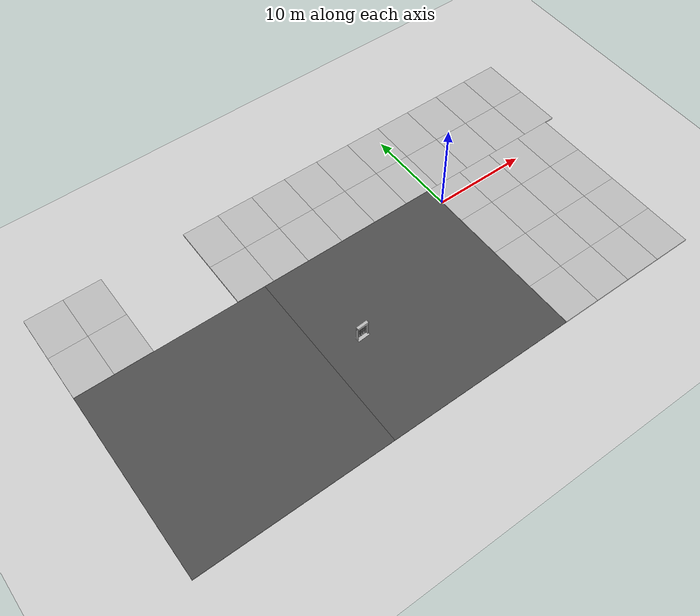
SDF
<sdf version="1.4">
 <world name="default">
  <light name="sun" type="directional">
   <pose>0 0 10 0 -0 0</pose>
   <diffuse>0.8 0.8 0.8 1</diffuse>
   <specular>0.2 0.2 0.2 1</specular>
   <attenuation>
    <range>1000</range>
    <constant>0.9</constant>
    <linear>0.01</linear>
    <quadratic>0.001</quadratic>
   </attenuation>
   <direction>-0.5 0.1 -0.9</direction>
  </light>
  <model name="ground_plane">
   <static>1</static>
   <link name="link">
    <collision name="collision">
     <geometry><plane><normal>0 0 1</normal><size>100 100</size></plane></geometry>
     <surface><friction><ode><mu>100</mu><mu2>50</mu2></ode></friction></surface>
     <max_contacts>1</max_contacts>
    </collision>
    <visual name="visual">
     <cast_shadows>0</cast_shadows>
     <geometry><plane><normal>0 0 1</normal><size>100 100</size></plane></geometry>
     <material>
      <script><uri>file://media/materials/scripts/gazebo.material</uri><name>Gazebo/Grey</name></script>
     </material>
    </visual>
    <velocity_decay><linear>0</linear><angular>0</angular></velocity_decay>
   </link>
  </model>
  <physics type="ode">
   <ode><solver><type>quick</type><iters>70</iters><sor>1.3</sor></solver></ode>
   <max_step_size>0.01</max_step_size>
   <real_time_factor>2</real_time_factor>
   <real_time_update_rate>100</real_time_update_rate>
   <gravity>0 0 -9.8</gravity>
  </physics>
  <scene><ambient>0.4 0.4 0.4 1</ambient><background>0.7 0.7 0.7 1</background><shadows>1</shadows></scene>
  <spherical_coordinates>
   <surface_model>EARTH_WGS84</surface_model>
   <latitude_deg>0</latitude_deg>
   <longitude_deg>0</longitude_deg>
   <elevation>0</elevation>
   <heading_deg>0</heading_deg>
  </spherical_coordinates>
  <model name="mud_box">
   <static>1</static>
   <link name="link">
    <collision name="collision">
     <geometry><box><size>8 10 0.2</size></box></geometry>
     <max_contacts>1</max_contacts>
    </collision>
    <visual name="visual_1">
     <pose>-2 2.5 0 0 -0 0</pose>
     <cast_shadows>0</cast_shadows>
     <geometry><box><size>4 5 0.2</size></box></geometry>
     <material>
      <script>
       <uri>model://mud_box/materials/scripts</uri>
       <uri>model://mud_box/materials/textures</uri>
       <name>vrc/mud</name>
      </script>
     </material>
    </visual>
    <visual name="visual_2">
     <pose>2 2.5 0 0 -0 0</pose>
     <cast_shadows>0</cast_shadows>
     <geometry><box><size>4 5 0.2</size></box></geometry>
     <material>
      <script>
       <uri>model://mud_box/materials/scripts</uri>
       <uri>model://mud_box/materials/textures</uri>
       <name>vrc/mud</name>
      </script>
     </material>
    </visual>
    <visual name="visual_3">
     <pose>2 -2.5 0 0 -0 0</pose>
     <cast_shadows>0</cast_shadows>
     <geometry><box><size>4 5 0.2</size></box></geometry>
     <material>
      <script>
       <uri>model://mud_box/materials/scripts</uri>
       <uri>model://mud_box/materials/textures</uri>
       <name>vrc/mud</name>
      </script>
     </material>
    </visual>
    <visual name="visual_4">
     <pose>-2 -2.5 0 0 -0 0</pose>
     <cast_shadows>0</cast_shadows>
     <geometry><box><size>4 5 0.2</size></box></geometry>
     <material>
      <script>
       <uri>model://mud_box/materials/scripts</uri>
       <uri>model://mud_box/materials/textures</uri>
       <name>vrc/mud</name>
      </script>
     </material>
    </visual>
    <velocity_decay><linear>0</linear><angular>0</angular></velocity_decay>
   </link>
   <pose>12 -3 0 0 -0 0</pose>
  </model>
  <model name="mud_box_0">
   <static>1</static>
   <link name="link">
    <collision name="collision">
     <geometry><box><size>8 10 0.2</size></box></geometry>
     <max_contacts>1</max_contacts>
    </collision>
    <visual name="visual_1">
     <pose>-2 2.5 0 0 -0 0</pose>
     <cast_shadows>0</cast_shadows>
     <geometry><box><size>4 5 0.2</size></box></geometry>
     <material>
      <script>
       <uri>model://mud_box/materials/scripts</uri>
       <uri>model://mud_box/materials/textures</uri>
       <name>vrc/mud</name>
      </script>
     </material>
    </visual>
    <visual name="visual_2">
     <pose>2 2.5 0 0 -0 0</pose>
     <cast_shadows>0</cast_shadows>
     <geometry><box><size>4 5 0.2</size></box></geometry>
     <material>
      <script>
       <uri>model://mud_box/materials/scripts</uri>
       <uri>model://mud_box/materials/textures</uri>
       <name>vrc/mud</name>
      </script>
     </material>
    </visual>
    <visual name="visual_3">
     <pose>2 -2.5 0 0 -0 0</pose>
     <cast_shadows>0</cast_shadows>
     <geometry><box><size>4 5 0.2</size></box></geometry>
     <material>
      <script>
       <uri>model://mud_box/materials/scripts</uri>
       <uri>model://mud_box/materials/textures</uri>
       <name>vrc/mud</name>
      </script>
     </material>
    </visual>
    <visual name="visual_4">
     <pose>-2 -2.5 0 0 -0 0</pose>
     <cast_shadows>0</cast_shadows>
     <geometry><box><size>4 5 0.2</size></box></geometry>
     <material>
      <script>
       <uri>model://mud_box/materials/scripts</uri>
       <uri>model://mud_box/materials/textures</uri>
       <name>vrc/mud</name>
      </script>
     </material>
    </visual>
    <velocity_decay><linear>0</linear><angular>0</angular></velocity_decay>
   </link>
   <pose>12 -13 0 0 -0 0</pose>
  </model>
  <model name="mud_box_1">
   <static>1</static>
   <link name="link">
    <collision name="collision">
     <geometry><box><size>8 10 0.2</size></box></geometry>
     <max_contacts>1</max_contacts>
    </collision>
    <visual name="visual_1">
     <pose>-2 2.5 0 0 -0 0</pose>
     <cast_shadows>0</cast_shadows>
     <geometry><box><size>4 5 0.2</size></box></geometry>
     <material>
      <script>
       <uri>model://mud_box/materials/scripts</uri>
       <uri>model://mud_box/materials/textures</uri>
       <name>vrc/mud</name>
      </script>
     </material>
    </visual>
    <visual name="visual_2">
     <pose>2 2.5 0 0 -0 0</pose>
     <cast_shadows>0</cast_shadows>
     <geometry><box><size>4 5 0.2</size></box></geometry>
     <material>
      <script>
       <uri>model://mud_box/materials/scripts</uri>
       <uri>model://mud_box/materials/textures</uri>
       <name>vrc/mud</name>
      </script>
     </material>
    </visual>
    <visual name="visual_3">
     <pose>2 -2.5 0 0 -0 0</pose>
     <cast_shadows>0</cast_shadows>
     <geometry><box><size>4 5 0.2</size></box></geometry>
     <material>
      <script>
       <uri>model://mud_box/materials/scripts</uri>
       <uri>model://mud_box/materials/textures</uri>
       <name>vrc/mud</name>
      </script>
     </material>
    </visual>
    <visual name="visual_4">
     <pose>-2 -2.5 0 0 -0 0</pose>
     <cast_shadows>0</cast_shadows>
     <geometry><box><size>4 5 0.2</size></box></geometry>
     <material>
      <script>
       <uri>model://mud_box/materials/scripts</uri>
       <uri>model://mud_box/materials/textures</uri>
       <name>vrc/mud</name>
      </script>
     </material>
    </visual>
    <velocity_decay><linear>0</linear><angular>0</angular></velocity_decay>
   </link>
   <pose>4 -3 0 0 -0 0</pose>
  </model>
  <model name="mud_box_2">
   <static>1</static>
   <link name="link">
    <collision name="collision">
     <geometry><box><size>8 10 0.2</size></box></geometry>
     <max_contacts>1</max_contacts>
    </collision>
    <visual name="visual_1">
     <pose>-2 2.5 0 0 -0 0</pose>
     <cast_shadows>0</cast_shadows>
     <geometry><box><size>4 5 0.2</size></box></geometry>
     <material>
      <script>
       <uri>model://mud_box/materials/scripts</uri>
       <uri>model://mud_box/materials/textures</uri>
       <name>vrc/mud</name>
      </script>
     </material>
    </visual>
    <visual name="visual_2">
     <pose>2 2.5 0 0 -0 0</pose>
     <cast_shadows>0</cast_shadows>
     <geometry><box><size>4 5 0.2</size></box></geometry>
     <material>
      <script>
       <uri>model://mud_box/materials/scripts</uri>
       <uri>model://mud_box/materials/textures</uri>
       <name>vrc/mud</name>
      </script>
     </material>
    </visual>
    <visual name="visual_3">
     <pose>2 -2.5 0 0 -0 0</pose>
     <cast_shadows>0</cast_shadows>
     <geometry><box><size>4 5 0.2</size></box></geometry>
     <material>
      <script>
       <uri>model://mud_box/materials/scripts</uri>
       <uri>model://mud_box/materials/textures</uri>
       <name>vrc/mud</name>
      </script>
     </material>
    </visual>
    <visual name="visual_4">
     <pose>-2 -2.5 0 0 -0 0</pose>
     <cast_shadows>0</cast_shadows>
     <geometry><box><size>4 5 0.2</size></box></geometry>
     <material>
      <script>
       <uri>model://mud_box/materials/scripts</uri>
       <uri>model://mud_box/materials/textures</uri>
       <name>vrc/mud</name>
      </script>
     </material>
    </visual>
    <velocity_decay><linear>0</linear><angular>0</angular></velocity_decay>
   </link>
   <pose>13 7 0 0 -0 0</pose>
  </model>
  <model name="mud_box_3">
   <static>1</static>
   <link name="link">
    <collision name="collision">
     <geometry><box><size>8 10 0.2</size></box></geometry>
     <max_contacts>1</max_contacts>
    </collision>
    <visual name="visual_1">
     <pose>-2 2.5 0 0 -0 0</pose>
     <cast_shadows>0</cast_shadows>
     <geometry><box><size>4 5 0.2</size></box></geometry>
     <material>
      <script>
       <uri>model://mud_box/materials/scripts</uri>
       <uri>model://mud_box/materials/textures</uri>
       <name>vrc/mud</name>
      </script>
     </material>
    </visual>
    <visual name="visual_2">
     <pose>2 2.5 0 0 -0 0</pose>
     <cast_shadows>0</cast_shadows>
     <geometry><box><size>4 5 0.2</size></box></geometry>
     <material>
      <script>
       <uri>model://mud_box/materials/scripts</uri>
       <uri>model://mud_box/materials/textures</uri>
       <name>vrc/mud</name>
      </script>
     </material>
    </visual>
    <visual name="visual_3">
     <pose>2 -2.5 0 0 -0 0</pose>
     <cast_shadows>0</cast_shadows>
     <geometry><box><size>4 5 0.2</size></box></geometry>
     <material>
      <script>
       <uri>model://mud_box/materials/scripts</uri>
       <uri>model://mud_box/materials/textures</uri>
       <name>vrc/mud</name>
      </script>
     </material>
    </visual>
    <visual name="visual_4">
     <pose>-2 -2.5 0 0 -0 0</pose>
     <cast_shadows>0</cast_shadows>
     <geometry><box><size>4 5 0.2</size></box></geometry>
     <material>
      <script>
       <uri>model://mud_box/materials/scripts</uri>
       <uri>model://mud_box/materials/textures</uri>
       <name>vrc/mud</name>
      </script>
     </material>
    </visual>
    <velocity_decay><linear>0</linear><angular>0</angular></velocity_decay>
   </link>
   <pose>5 7 0 0 -0 0</pose>
  </model>
  <model name="mud_box_4">
   <static>1</static>
   <link name="link">
    <collision name="collision">
     <geometry><box><size>8 10 0.2</size></box></geometry>
     <max_contacts>1</max_contacts>
    </collision>
    <visual name="visual_1">
     <pose>-2 2.5 0 0 -0 0</pose>
     <cast_shadows>0</cast_shadows>
     <geometry><box><size>4 5 0.2</size></box></geometry>
     <material>
      <script>
       <uri>model://mud_box/materials/scripts</uri>
       <uri>model://mud_box/materials/textures</uri>
       <name>vrc/mud</name>
      </script>
     </material>
    </visual>
    <visual name="visual_2">
     <pose>2 2.5 0 0 -0 0</pose>
     <cast_shadows>0</cast_shadows>
     <geometry><box><size>4 5 0.2</size></box></geometry>
     <material>
      <script>
       <uri>model://mud_box/materials/scripts</uri>
       <uri>model://mud_box/materials/textures</uri>
       <name>vrc/mud</name>
      </script>
     </material>
    </visual>
    <visual name="visual_3">
     <pose>2 -2.5 0 0 -0 0</pose>
     <cast_shadows>0</cast_shadows>
     <geometry><box><size>4 5 0.2</size></box></geometry>
     <material>
      <script>
       <uri>model://mud_box/materials/scripts</uri>
       <uri>model://mud_box/materials/textures</uri>
       <name>vrc/mud</name>
      </script>
     </material>
    </visual>
    <visual name="visual_4">
     <pose>-2 -2.5 0 0 -0 0</pose>
     <cast_shadows>0</cast_shadows>
     <geometry><box><size>4 5 0.2</size></box></geometry>
     <material>
      <script>
       <uri>model://mud_box/materials/scripts</uri>
       <uri>model://mud_box/materials/textures</uri>
       <name>vrc/mud</name>
      </script>
     </material>
    </visual>
    <velocity_decay><linear>0</linear><angular>0</angular></velocity_decay>
   </link>
   <pose>-3 7 0 0 -0 0</pose>
  </model>
  <model name="mud_box_5">
   <static>1</static>
   <link name="link">
    <collision name="collision">
     <geometry><box><size>8 10 0.2</size></box></geometry>
     <max_contacts>1</max_contacts>
    </collision>
    <visual name="visual_1">
     <pose>-2 2.5 0 0 -0 0</pose>
     <cast_shadows>0</cast_shadows>
     <geometry><box><size>4 5 0.2</size></box></geometry>
     <material>
      <script>
       <uri>model://mud_box/materials/scripts</uri>
       <uri>model://mud_box/materials/textures</uri>
       <name>vrc/mud</name>
      </script>
     </material>
    </visual>
    <visual name="visual_2">
     <pose>2 2.5 0 0 -0 0</pose>
     <cast_shadows>0</cast_shadows>
     <geometry><box><size>4 5 0.2</size></box></geometry>
     <material>
      <script>
       <uri>model://mud_box/materials/scripts</uri>
       <uri>model://mud_box/materials/textures</uri>
       <name>vrc/mud</name>
      </script>
     </material>
    </visual>
    <visual name="visual_3">
     <pose>2 -2.5 0 0 -0 0</pose>
     <cast_shadows>0</cast_shadows>
     <geometry><box><size>4 5 0.2</size></box></geometry>
     <material>
      <script>
       <uri>model://mud_box/materials/scripts</uri>
       <uri>model://mud_box/materials/textures</uri>
       <name>vrc/mud</name>
      </script>
     </material>
    </visual>
    <visual name="visual_4">
     <pose>-2 -2.5 0 0 -0 0</pose>
     <cast_shadows>0</cast_shadows>
     <geometry><box><size>4 5 0.2</size></box></geometry>
     <material>
      <script>
       <uri>model://mud_box/materials/scripts</uri>
       <uri>model://mud_box/materials/textures</uri>
       <name>vrc/mud</name>
      </script>
     </material>
    </visual>
    <velocity_decay><linear>0</linear><angular>0</angular></velocity_decay>
   </link>
   <pose>-11 7 0 0 -0 0</pose>
  </model>
  <model name="asphalt_plane">
   <static>1</static>
   <link name="link">
    <collision name="collision">
     <geometry><box><size>20 20 0.1</size></box></geometry>
     <max_contacts>1</max_contacts>
    </collision>
    <visual name="visual">
     <cast_shadows>0</cast_shadows>
     <geometry><box><size>20 20 0.1</size></box></geometry>
     <material>
      <script>
       <uri>model://asphalt_plane/materials/scripts</uri>
       <uri>model://asphalt_plane/materials/textures</uri>
       <name>vrc/asphalt</name>
      </script>
     </material>
    </visual>
    <velocity_decay><linear>0</linear><angular>0</angular></velocity_decay>
   </link>
   <pose>-10 -8 0 0 -0 0</pose>
  </model>
  <model name="mud_box_6">
   <static>1</static>
   <link name="link">
    <collision name="collision">
     <geometry><box><size>8 10 0.2</size></box></geometry>
     <max_contacts>1</max_contacts>
    </collision>
    <visual name="visual_1">
     <pose>-2 2.5 0 0 -0 0</pose>
     <cast_shadows>0</cast_shadows>
     <geometry><box><size>4 5 0.2</size></box></geometry>
     <material>
      <script>
       <uri>model://mud_box/materials/scripts</uri>
       <uri>model://mud_box/materials/textures</uri>
       <name>vrc/mud</name>
      </script>
     </material>
    </visual>
    <visual name="visual_2">
     <pose>2 2.5 0 0 -0 0</pose>
     <cast_shadows>0</cast_shadows>
     <geometry><box><size>4 5 0.2</size></box></geometry>
     <material>
      <script>
       <uri>model://mud_box/materials/scripts</uri>
       <uri>model://mud_box/materials/textures</uri>
       <name>vrc/mud</name>
      </script>
     </material>
    </visual>
    <visual name="visual_3">
     <pose>2 -2.5 0 0 -0 0</pose>
     <cast_shadows>0</cast_shadows>
     <geometry><box><size>4 5 0.2</size></box></geometry>
     <material>
      <script>
       <uri>model://mud_box/materials/scripts</uri>
       <uri>model://mud_box/materials/textures</uri>
       <name>vrc/mud</name>
      </script>
     </material>
    </visual>
    <visual name="visual_4">
     <pose>-2 -2.5 0 0 -0 0</pose>
     <cast_shadows>0</cast_shadows>
     <geometry><box><size>4 5 0.2</size></box></geometry>
     <material>
      <script>
       <uri>model://mud_box/materials/scripts</uri>
       <uri>model://mud_box/materials/textures</uri>
       <name>vrc/mud</name>
      </script>
     </material>
    </visual>
    <velocity_decay><linear>0</linear><angular>0</angular></velocity_decay>
   </link>
   <pose>4 -13 0 0 -0 0</pose>
  </model>
  <model name="mud_box_7">
   <static>1</static>
   <link name="link">
    <collision name="collision">
     <geometry><box><size>8 10 0.2</size></box></geometry>
     <max_contacts>1</max_contacts>
    </collision>
    <visual name="visual_1">
     <pose>-2 2.5 0 0 -0 0</pose>
     <cast_shadows>0</cast_shadows>
     <geometry><box><size>4 5 0.2</size></box></geometry>
     <material>
      <script>
       <uri>model://mud_box/materials/scripts</uri>
       <uri>model://mud_box/materials/textures</uri>
       <name>vrc/mud</name>
      </script>
     </material>
    </visual>
    <visual name="visual_2">
     <pose>2 2.5 0 0 -0 0</pose>
     <cast_shadows>0</cast_shadows>
     <geometry><box><size>4 5 0.2</size></box></geometry>
     <material>
      <script>
       <uri>model://mud_box/materials/scripts</uri>
       <uri>model://mud_box/materials/textures</uri>
       <name>vrc/mud</name>
      </script>
     </material>
    </visual>
    <visual name="visual_3">
     <pose>2 -2.5 0 0 -0 0</pose>
     <cast_shadows>0</cast_shadows>
     <geometry><box><size>4 5 0.2</size></box></geometry>
     <material>
      <script>
       <uri>model://mud_box/materials/scripts</uri>
       <uri>model://mud_box/materials/textures</uri>
       <name>vrc/mud</name>
      </script>
     </material>
    </visual>
    <visual name="visual_4">
     <pose>-2 -2.5 0 0 -0 0</pose>
     <cast_shadows>0</cast_shadows>
     <geometry><box><size>4 5 0.2</size></box></geometry>
     <material>
      <script>
       <uri>model://mud_box/materials/scripts</uri>
       <uri>model://mud_box/materials/textures</uri>
       <name>vrc/mud</name>
      </script>
     </material>
    </visual>
    <velocity_decay><linear>0</linear><angular>0</angular></velocity_decay>
   </link>
   <pose>-19 7 0 0 -0 0</pose>
  </model>
  <model name="asphalt_plane_0">
   <static>1</static>
   <link name="link">
    <collision name="collision">
     <geometry><box><size>20 20 0.1</size></box></geometry>
     <max_contacts>1</max_contacts>
    </collision>
    <visual name="visual">
     <cast_shadows>0</cast_shadows>
     <geometry><box><size>20 20 0.1</size></box></geometry>
     <material>
      <script>
       <uri>model://asphalt_plane/materials/scripts</uri>
       <uri>model://asphalt_plane/materials/textures</uri>
       <name>vrc/asphalt</name>
      </script>
     </material>
    </visual>
    <velocity_decay><linear>0</linear><angular>0</angular></velocity_decay>
   </link>
   <pose>-30 -8 0 0 -0 0</pose>
  </model>
  <model name="mud_box_8">
   <static>1</static>
   <link name="link">
    <collision name="collision">
     <geometry><box><size>8 10 0.2</size></box></geometry>
     <max_contacts>1</max_contacts>
    </collision>
    <visual name="visual_1">
     <pose>-2 2.5 0 0 -0 0</pose>
     <cast_shadows>0</cast_shadows>
     <geometry><box><size>4 5 0.2</size></box></geometry>
     <material>
      <script>
       <uri>model://mud_box/materials/scripts</uri>
       <uri>model://mud_box/materials/textures</uri>
       <name>vrc/mud</name>
      </script>
     </material>
    </visual>
    <visual name="visual_2">
     <pose>2 2.5 0 0 -0 0</pose>
     <cast_shadows>0</cast_shadows>
     <geometry><box><size>4 5 0.2</size></box></geometry>
     <material>
      <script>
       <uri>model://mud_box/materials/scripts</uri>
       <uri>model://mud_box/materials/textures</uri>
       <name>vrc/mud</name>
      </script>
     </material>
    </visual>
    <visual name="visual_3">
     <pose>2 -2.5 0 0 -0 0</pose>
     <cast_shadows>0</cast_shadows>
     <geometry><box><size>4 5 0.2</size></box></geometry>
     <material>
      <script>
       <uri>model://mud_box/materials/scripts</uri>
       <uri>model://mud_box/materials/textures</uri>
       <name>vrc/mud</name>
      </script>
     </material>
    </visual>
    <visual name="visual_4">
     <pose>-2 -2.5 0 0 -0 0</pose>
     <cast_shadows>0</cast_shadows>
     <geometry><box><size>4 5 0.2</size></box></geometry>
     <material>
      <script>
       <uri>model://mud_box/materials/scripts</uri>
       <uri>model://mud_box/materials/textures</uri>
       <name>vrc/mud</name>
      </script>
     </material>
    </visual>
    <velocity_decay><linear>0</linear><angular>0</angular></velocity_decay>
   </link>
   <pose>-36 7 0 0 -0 0</pose>
  </model>
  <model name="frc2016_portcullis">
   <link name="base">
    <inertial>
     <mass>50</mass>
     <pose>0 0 1.02941 0 -0 0</pose>
     <inertia><ixx>3.81711</ixx><ixy>0</ixy><ixz>0</ixz><iyy>4.87698</iyy><iyz>0</iyz><izz>1.6283</izz></inertia>
    </inertial>
    <visual name="platform">
     <pose>0 0 0.07284 0 -0 0</pose>
     <geometry><box><size>1.27 0.5842 0.003175</size></box></geometry>
    </visual>
    <collision name="platform">
     <pose>0 0 0.07284 0 -0 0</pose>
     <geometry><box><size>1.27 0.5842 0.003175</size></box></geometry>
     <max_contacts>1</max_contacts>
    </collision>
    <visual name="left_column">
     <pose>0.59284 0 0.99042 0 -0 0</pose>
     <geometry><box><size>0.08375 0.28575 1.83198</size></box></geometry>
    </visual>
    <collision name="left_column">
     <pose>0.59284 0 0.99042 0 -0 0</pose>
     <geometry><box><size>0.08375 0.28575 1.83198</size></box></geometry>
     <max_contacts>1</max_contacts>
    </collision>
    <visual name="right_column">
     <pose>-0.57759 0 0.99042 0 -0 0</pose>
     <geometry><box><size>0.08375 0.28575 1.83198</size></box></geometry>
    </visual>
    <collision name="right_column">
     <pose>-0.57759 0 0.99042 0 -0 0</pose>
     <geometry><box><size>0.08375 0.28575 1.83198</size></box></geometry>
     <max_contacts>1</max_contacts>
    </collision>
    <visual name="top">
     <pose>-0.00034 0 1.77722 0 -0 0</pose>
     <geometry><box><size>1.22962 0.28575 0.26657</size></box></geometry>
    </visual>
    <collision name="top">
     <pose>-0.00034 0 1.77722 0 -0 0</pose>
     <geometry><box><size>1.22962 0.28575 0.26657</size></box></geometry>
     <max_contacts>1</max_contacts>
    </collision>
    <visual name="castor1">
     <pose>-0.45651 -0.16234 0.03272 0 -0 0</pose>
     <geometry><sphere><radius>0.03272</radius></sphere></geometry>
    </visual>
    <collision name="castor1">
     <pose>-0.45651 -0.16234 0.03272 0 -0 0</pose>
     <geometry><sphere><radius>0.03272</radius></sphere></geometry>
     <max_contacts>1</max_contacts>
    </collision>
    <visual name="castor2">
     <pose>-0.27883 0.21836 0.03272 0 -0 0</pose>
     <geometry><sphere><radius>0.03272</radius></sphere></geometry>
    </visual>
    <collision name="castor2">
     <pose>-0.27883 0.21836 0.03272 0 -0 0</pose>
     <geometry><sphere><radius>0.03272</radius></sphere></geometry>
     <max_contacts>1</max_contacts>
    </collision>
    <visual name="castor3">
     <pose>0.28083 0.21906 0.03272 0 -0 0</pose>
     <geometry><sphere><radius>0.03272</radius></sphere></geometry>
    </visual>
    <collision name="castor3">
     <pose>0.28083 0.21906 0.03272 0 -0 0</pose>
     <geometry><sphere><radius>0.03272</radius></sphere></geometry>
     <max_contacts>1</max_contacts>
    </collision>
    <visual name="castor4">
     <pose>0.45871 -0.16186 0.03272 0 -0 0</pose>
     <geometry><sphere><radius>0.03272</radius></sphere></geometry>
    </visual>
    <collision name="castor4">
     <pose>0.45871 -0.16186 0.03272 0 -0 0</pose>
     <geometry><sphere><radius>0.03272</radius></sphere></geometry>
     <max_contacts>1</max_contacts>
    </collision>
    <velocity_decay><linear>0</linear><angular>0</angular></velocity_decay>
   </link>
   <link name="gate">
    <pose>-0.0287 0.02885 0.93327 0 -0 0</pose>
    <inertial>
     <mass>2</mass>
     <inertia><ixx>3.81711</ixx><ixy>0</ixy><ixz>0</ixz><iyy>4.87698</iyy><iyz>0</iyz><izz>1.6283</izz></inertia>
    </inertial>
    <collision name="collision">
     <geometry><box><size>1.1938 0.02496 1.45732</size></box></geometry>
     <max_contacts>1</max_contacts>
    </collision>
    <visual name="horz_1">
     <pose>0 0 -0.70326 0 -0 0</pose>
     <geometry><box><size>1.1938 0.02496 0.0508</size></box></geometry>
     <material><ambient>0.4 0.4 0.4 1</ambient><diffuse>0.4 0.4 0.4 1</diffuse></material>
    </visual>
    <visual name="horz_2">
     <pose>0 0 -0.44926 0 -0 0</pose>
     <geometry><box><size>1.1938 0.02496 0.0508</size></box></geometry>
     <material><ambient>0.4 0.4 0.4 1</ambient><diffuse>0.4 0.4 0.4 1</diffuse></material>
    </visual>
    <visual name="horz_3">
     <pose>0 0 -0.14517 0 -0 0</pose>
     <geometry><box><size>1.1938 0.02496 0.0508</size></box></geometry>
     <material><ambient>0.4 0.4 0.4 1</ambient><diffuse>0.4 0.4 0.4 1</diffuse></material>
    </visual>
    <visual name="horz_4">
     <pose>0 0 0.16034 0 -0 0</pose>
     <geometry><box><size>1.1938 0.02496 0.0508</size></box></geometry>
     <material><ambient>0.4 0.4 0.4 1</ambient><diffuse>0.4 0.4 0.4 1</diffuse></material>
    </visual>
    <visual name="horz_5">
     <pose>0 0 0.46514 0 -0 0</pose>
     <geometry><box><size>1.1938 0.02496 0.0508</size></box></geometry>
     <material><ambient>0.4 0.4 0.4 1</ambient><diffuse>0.4 0.4 0.4 1</diffuse></material>
    </visual>
    <visual name="horz_6">
     <pose>0 0 0.72994 0 -0 0</pose>
     <geometry><box><size>1.1938 0.02496 0.0508</size></box></geometry>
     <material><ambient>0.4 0.4 0.4 1</ambient><diffuse>0.4 0.4 0.4 1</diffuse></material>
    </visual>
    <visual name="vert_1">
     <pose>-0.58448 0 0 0 -0 0</pose>
     <geometry><box><size>0.02495 0.02496 1.45732</size></box></geometry>
     <material><ambient>0.4 0.4 0.4 1</ambient><diffuse>0.4 0.4 0.4 1</diffuse></material>
    </visual>
    <visual name="vert_2">
     <pose>-0.38128 0 0 0 -0 0</pose>
     <geometry><box><size>0.0508 0.02496 1.45732</size></box></geometry>
     <material><ambient>0.4 0.4 0.4 1</ambient><diffuse>0.4 0.4 0.4 1</diffuse></material>
    </visual>
    <visual name="vert_3">
     <pose>-0.12728 0 0 0 -0 0</pose>
     <geometry><box><size>0.0508 0.02496 1.45732</size></box></geometry>
     <material><ambient>0.4 0.4 0.4 1</ambient><diffuse>0.4 0.4 0.4 1</diffuse></material>
    </visual>
    <visual name="vert_4">
     <pose>0.12672 0 0 0 -0 0</pose>
     <geometry><box><size>0.0508 0.02496 1.45732</size></box></geometry>
     <material><ambient>0.4 0.4 0.4 1</ambient><diffuse>0.4 0.4 0.4 1</diffuse></material>
    </visual>
    <visual name="vert_5">
     <pose>0.38072 0 0 0 -0 0</pose>
     <geometry><box><size>0.0508 0.02496 1.45732</size></box></geometry>
     <material><ambient>0.4 0.4 0.4 1</ambient><diffuse>0.4 0.4 0.4 1</diffuse></material>
    </visual>
    <visual name="vert_6">
     <pose>0.58392 0 0 0 -0 0</pose>
     <geometry><box><size>0.02495 0.02496 1.45732</size></box></geometry>
     <material><ambient>0.4 0.4 0.4 1</ambient><diffuse>0.4 0.4 0.4 1</diffuse></material>
    </visual>
    <velocity_decay><linear>0</linear><angular>0</angular></velocity_decay>
   </link>
   <joint name="joint" type="prismatic">
    <parent>base</parent>
    <child>gate</child>
    <axis><xyz>0 0 1</xyz><limit><lower>0</lower><upper>1</upper></limit></axis>
   </joint>
   <pose>-15.9741 -7.98808 0.049963 0.000168 3e-06 0.061142</pose>
   <static>0</static>
  </model>
 </world>
</sdf>
